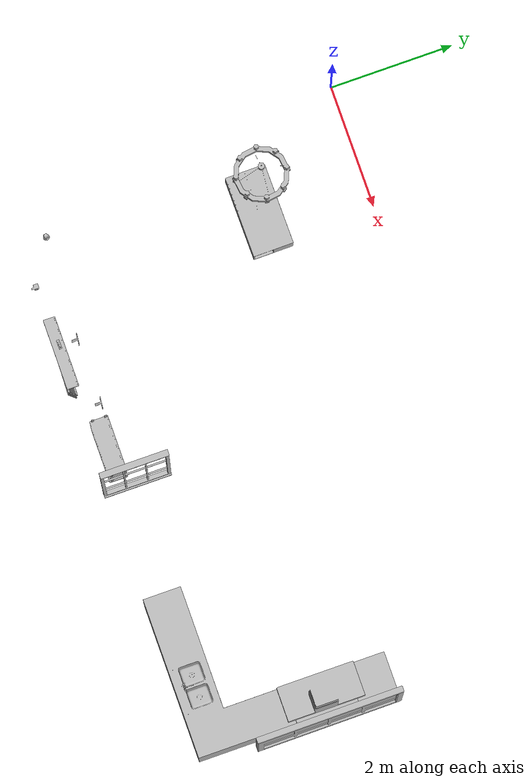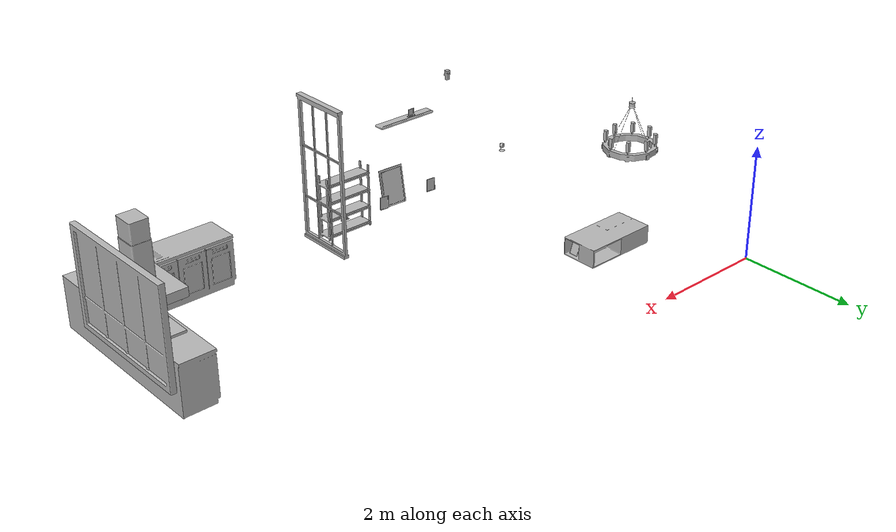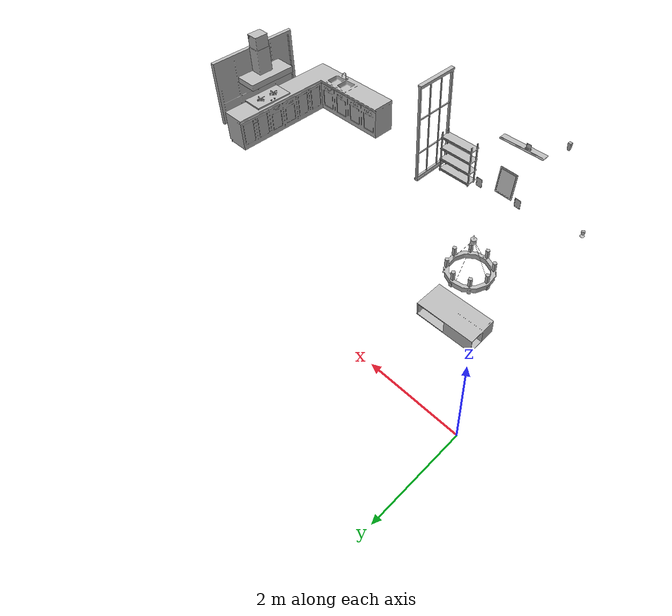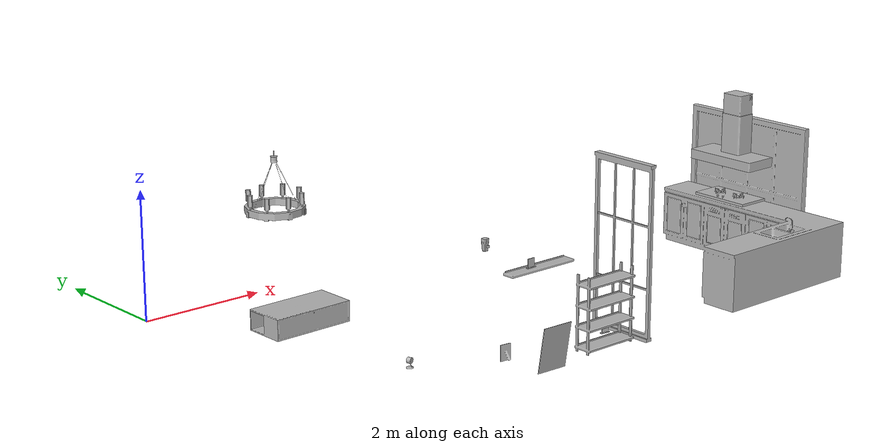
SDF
<sdf version="1.7">
 <world name="default">
  <model name="Board_01_001">
   <frame name="aws_robomaker_residential_Board_01::__model__" attached_to="aws_robomaker_residential_Board_01::link">
    <pose relative_to="__model__">0 0 0 0 -0 0</pose>
   </frame>
   <link name="aws_robomaker_residential_Board_01::link">
    <inertial><mass>1</mass></inertial>
    <collision name="collision">
     <geometry>
      <mesh>
       <uri>model:///aws_robomaker_residential_Board_01/meshes/aws_Board_01_collision.DAE</uri>
       <scale>1 1 1</scale>
      </mesh>
     </geometry>
    </collision>
    <visual name="visual">
     <geometry>
      <mesh><uri>model:///aws_robomaker_residential_Board_01/meshes/aws_Board_01_visual.DAE</uri></mesh>
     </geometry>
     <meta><layer>2</layer></meta>
    </visual>
    <pose relative_to="aws_robomaker_residential_Board_01::__model__">0 0 0 0 -0 0</pose>
   </link>
   <static>1</static>
   <pose>2.77907 -5.3927 1.53817 0 -0 0</pose>
  </model>
  <model name="Chandelier_01_004">
   <frame name="aws_robomaker_residential_Chandelier_01::__model__" attached_to="aws_robomaker_residential_Chandelier_01::link">
    <pose relative_to="__model__">0 0 0 0 -0 0</pose>
   </frame>
   <link name="aws_robomaker_residential_Chandelier_01::link">
    <inertial><mass>1</mass></inertial>
    <collision name="collision">
     <geometry>
      <mesh>
       <uri>model:///aws_robomaker_residential_Chandelier_01/meshes/aws_Chandelier_01_collision.DAE</uri>
       <scale>1 1 1</scale>
      </mesh>
     </geometry>
    </collision>
    <visual name="visual">
     <geometry>
      <mesh><uri>model:///aws_robomaker_residential_Chandelier_01/meshes/aws_Chandelier_01_visual.DAE</uri></mesh>
     </geometry>
     <meta><layer>2</layer></meta>
    </visual>
    <pose relative_to="aws_robomaker_residential_Chandelier_01::__model__">0 0 0 0 -0 0</pose>
   </link>
   <static>1</static>
   <pose>1.22106 -1.59204 1.7873 0 -0 0</pose>
  </model>
  <model name="SecurityCamera_01_001">
   <frame name="aws_robomaker_residential_SecurityCamera_01::__model__" attached_to="aws_robomaker_residential_SecurityCamera_01::link">
    <pose relative_to="__model__">0 0 0 0 -0 0</pose>
   </frame>
   <link name="aws_robomaker_residential_SecurityCamera_01::link">
    <inertial>
     <mass>1</mass>
     <inertia>
      <ixx>18.2222</ixx>
      <ixy>0</ixy>
      <ixz>0</ixz>
      <iyy>18.2222</iyy>
      <iyz>0</iyz>
      <izz>0.0018767</izz>
     </inertia>
    </inertial>
    <collision name="collision">
     <geometry>
      <mesh>
       <uri>model:///aws_robomaker_residential_SecurityCamera_01/meshes/aws_SecurityCamera_01_collision.DAE</uri>
       <scale>1 1 1</scale>
      </mesh>
     </geometry>
    </collision>
    <visual name="visual">
     <geometry>
      <mesh>
       <uri>model:///aws_robomaker_residential_SecurityCamera_01/meshes/aws_SecurityCamera_01_visual.DAE</uri>
      </mesh>
     </geometry>
     <meta><layer>2</layer></meta>
    </visual>
    <pose relative_to="aws_robomaker_residential_SecurityCamera_01::__model__">0 0 0 0 -0 0</pose>
   </link>
   <pose>0.842134 -4.99629 0.495067 0 0 -2.84104</pose>
  </model>
  <model name="CoffeeTable_01_001">
   <frame name="aws_robomaker_residential_CoffeeTable_01::__model__" attached_to="aws_robomaker_residential_CoffeeTable_01::link">
    <pose relative_to="__model__">0 0 0 0 -0 0</pose>
   </frame>
   <link name="aws_robomaker_residential_CoffeeTable_01::link">
    <inertial>
     <mass>21.7</mass>
     <inertia><ixx>0.81375</ixx><ixy>0</ixy><ixz>0</ixz><iyy>2.76675</iyy><iyz>0</iyz><izz>3.254</izz></inertia>
    </inertial>
    <collision name="collision">
     <geometry>
      <mesh>
       <uri>model:///aws_robomaker_residential_CoffeeTable_01/meshes/aws_CoffeeTable_01_collision.DAE</uri>
       <scale>1 1 1</scale>
      </mesh>
     </geometry>
     <surface><contact><ode><max_vel>0.01</max_vel></ode></contact></surface>
    </collision>
    <visual name="visual">
     <geometry>
      <mesh><uri>model:///aws_robomaker_residential_CoffeeTable_01/meshes/aws_CoffeeTable_01_visual.DAE</uri></mesh>
     </geometry>
     <meta><layer>1</layer></meta>
    </visual>
    <pose relative_to="aws_robomaker_residential_CoffeeTable_01::__model__">0 0 0 0 -0 0</pose>
   </link>
   <static>0</static>
   <pose>1.5123 -1.73344 0.041983 0 -0 0.01</pose>
  </model>
  <model name="CookingBench_01_001">
   <frame name="aws_robomaker_residential_CookingBench_01::__model__" attached_to="aws_robomaker_residential_CookingBench_01::link">
    <pose relative_to="__model__">0 0 0 0 -0 0</pose>
   </frame>
   <link name="aws_robomaker_residential_CookingBench_01::link">
    <inertial>
     <mass>1</mass>
     <inertia><ixx>1</ixx><ixy>0</ixy><ixz>0</ixz><iyy>1</iyy><iyz>0</iyz><izz>1</izz></inertia>
    </inertial>
    <collision name="collision">
     <geometry>
      <mesh>
       <uri>model:///aws_robomaker_residential_CookingBench_01/meshes/aws_CookingBench_01_collision.DAE</uri>
       <scale>1 1 1</scale>
      </mesh>
     </geometry>
    </collision>
    <visual name="visual">
     <geometry>
      <mesh>
       <uri>model:///aws_robomaker_residential_CookingBench_01/meshes/aws_CookingBench_01_visual.DAE</uri>
      </mesh>
     </geometry>
     <meta><layer>1</layer></meta>
    </visual>
    <pose relative_to="aws_robomaker_residential_CookingBench_01::__model__">0 0 0 0 -0 0</pose>
   </link>
   <pose>9.03838 -3.35114 0.90361 0 -0 3.13713</pose>
  </model>
  <model name="FoldingDoor_02_002">
   <frame name="aws_robomaker_residential_FoldingDoor_02::__model__" attached_to="aws_robomaker_residential_FoldingDoor_02::link">
    <pose relative_to="__model__">0 0 0 0 -0 0</pose>
   </frame>
   <link name="aws_robomaker_residential_FoldingDoor_02::link">
    <inertial><mass>1</mass></inertial>
    <collision name="collision">
     <geometry>
      <mesh>
       <uri>model:///aws_robomaker_residential_FoldingDoor_02/meshes/aws_FoldingDoor_02_collision.DAE</uri>
       <scale>1 1 1</scale>
      </mesh>
     </geometry>
    </collision>
    <visual name="visual">
     <geometry>
      <mesh><uri>model:///aws_robomaker_residential_FoldingDoor_02/meshes/aws_FoldingDoor_02_visual.DAE</uri></mesh>
     </geometry>
     <meta><layer>2</layer></meta>
    </visual>
    <pose relative_to="aws_robomaker_residential_FoldingDoor_02::__model__">0 0 0 0 -0 0</pose>
   </link>
   <static>1</static>
   <pose>4.8912 -4.84968 0 0 -0 0</pose>
  </model>
  <model name="KitchenCabinet_01_001">
   <frame name="aws_robomaker_residential_KitchenCabinet_01::__model__" attached_to="aws_robomaker_residential_KitchenCabinet_01::link">
    <pose relative_to="__model__">0 0 0 0 -0 0</pose>
   </frame>
   <link name="aws_robomaker_residential_KitchenCabinet_01::link">
    <inertial><mass>1</mass></inertial>
    <collision name="collision">
     <geometry>
      <mesh>
       <uri>model:///aws_robomaker_residential_KitchenCabinet_01/meshes/aws_KitchenCabinet_01_collision.DAE</uri>
       <scale>1 1 1</scale>
      </mesh>
     </geometry>
    </collision>
    <visual name="visual">
     <geometry>
      <mesh>
       <uri>model:///aws_robomaker_residential_KitchenCabinet_01/meshes/aws_KitchenCabinet_01_visual.DAE</uri>
      </mesh>
     </geometry>
     <meta><layer>1</layer></meta>
    </visual>
    <pose relative_to="aws_robomaker_residential_KitchenCabinet_01::__model__">0 0 0 0 -0 0</pose>
   </link>
   <static>1</static>
   <pose>8.00201 -3.83651 0.012068 0 0 -3.14</pose>
  </model>
  <model name="LightC_01_001">
   <frame name="aws_robomaker_residential_LightC_01::__model__" attached_to="aws_robomaker_residential_LightC_01::link">
    <pose relative_to="__model__">0 0 0 0 -0 0</pose>
   </frame>
   <link name="aws_robomaker_residential_LightC_01::link">
    <inertial>
     <mass>1</mass>
     <inertia><ixx>1</ixx><ixy>0</ixy><ixz>0</ixz><iyy>1</iyy><iyz>0</iyz><izz>1</izz></inertia>
    </inertial>
    <collision name="collision">
     <geometry>
      <mesh>
       <uri>model:///aws_robomaker_residential_LightC_01/meshes/aws_LightC_01_collision.DAE</uri>
       <scale>1 1 1</scale>
      </mesh>
     </geometry>
    </collision>
    <visual name="visual">
     <geometry>
      <mesh><uri>model:///aws_robomaker_residential_LightC_01/meshes/aws_LightC_01_visual.DAE</uri></mesh>
     </geometry>
     <meta><layer>2</layer></meta>
    </visual>
    <pose relative_to="aws_robomaker_residential_LightC_01::__model__">0 0 0 0 -0 0</pose>
   </link>
   <static>0</static>
   <pose>1.76957 -5.44437 2 0 -0 0</pose>
  </model>
  <model name="PortraitB_03">
   <frame name="aws_robomaker_residential_PortraitB_03::__model__" attached_to="aws_robomaker_residential_PortraitB_03::link">
    <pose relative_to="__model__">0 0 0 0 -0 0</pose>
   </frame>
   <link name="aws_robomaker_residential_PortraitB_03::link">
    <inertial><mass>1</mass></inertial>
    <collision name="collision">
     <geometry>
      <mesh>
       <uri>model:///aws_robomaker_residential_PortraitB_03/meshes/aws_PortraitB_01_collision.DAE</uri>
       <scale>1 1 1</scale>
      </mesh>
     </geometry>
    </collision>
    <visual name="visual">
     <geometry>
      <mesh><uri>model:///aws_robomaker_residential_PortraitB_03/meshes/aws_PortraitB_01_visual.DAE</uri></mesh>
     </geometry>
     <meta><layer>2</layer></meta>
    </visual>
    <pose relative_to="aws_robomaker_residential_PortraitB_03::__model__">0 0 0 0 -0 0</pose>
   </link>
   <static>1</static>
   <pose>3.07138 -5.34937 0.005494 -0.168428 -0 3.10423</pose>
  </model>
  <model name="DeskPortraitA_02">
   <frame name="aws_robomaker_residential_DeskPortraitA_02::__model__" attached_to="aws_robomaker_residential_DeskPortraitA_02::link">
    <pose relative_to="__model__">0 0 0 0 -0 0</pose>
   </frame>
   <link name="aws_robomaker_residential_DeskPortraitA_02::link">
    <inertial>
     <mass>1</mass>
     <inertia><ixx>0.0835</ixx><ixy>0</ixy><ixz>0</ixz><iyy>0.16</iyy><iyz>0</iyz><izz>0.08347</izz></inertia>
    </inertial>
    <collision name="collision">
     <geometry>
      <mesh>
       <uri>model:///aws_robomaker_residential_DeskPortraitA_02/meshes/aws_DeskPortraitA_01_collision.DAE</uri>
       <scale>1 1 1</scale>
      </mesh>
     </geometry>
    </collision>
    <visual name="visual">
     <geometry>
      <mesh>
       <uri>model:///aws_robomaker_residential_DeskPortraitA_02/meshes/aws_DeskPortraitA_01_visual.DAE</uri>
      </mesh>
     </geometry>
     <meta><layer>1</layer></meta>
    </visual>
    <pose relative_to="aws_robomaker_residential_DeskPortraitA_02::__model__">0 0 0 0 -0 0</pose>
   </link>
   <pose>2.04608 -1.89293 0.070388 -0.018328 -0.000441 1.57622</pose>
  </model>
  <model name="DeskPortraitD_01">
   <frame name="aws_robomaker_residential_DeskPortraitD_01::__model__" attached_to="aws_robomaker_residential_DeskPortraitD_01::link">
    <pose relative_to="__model__">0 0 0 0 -0 0</pose>
   </frame>
   <link name="aws_robomaker_residential_DeskPortraitD_01::link">
    <inertial>
     <mass>0.4</mass>
     <inertia><ixx>0.0616</ixx><ixy>0</ixy><ixz>0</ixz><iyy>0.1313</iyy><iyz>0</iyz><izz>0.0803</izz></inertia>
    </inertial>
    <collision name="collision">
     <geometry>
      <mesh>
       <uri>model:///aws_robomaker_residential_DeskPortraitD_01/meshes/aws_DeskPortraitD_01_collision.DAE</uri>
       <scale>1 1 1</scale>
      </mesh>
     </geometry>
     <surface>
      <friction><ode><mu>0.7</mu><mu2>0.7</mu2></ode></friction>
      <contact><ode><kd>28500</kd></ode></contact>
     </surface>
    </collision>
    <visual name="visual">
     <geometry>
      <mesh>
       <uri>model:///aws_robomaker_residential_DeskPortraitD_01/meshes/aws_DeskPortraitD_01_visual.DAE</uri>
      </mesh>
     </geometry>
     <meta><layer>1</layer></meta>
    </visual>
    <pose relative_to="aws_robomaker_residential_DeskPortraitD_01::__model__">0 0 0 0 -0 0</pose>
   </link>
   <pose>2.64556 -5.37622 1.57374 0 0 -3.11283</pose>
  </model>
  <model name="DeskPortraitD_04">
   <frame name="aws_robomaker_residential_DeskPortraitD_04::__model__" attached_to="aws_robomaker_residential_DeskPortraitD_04::link">
    <pose relative_to="__model__">0 0 0 0 -0 0</pose>
   </frame>
   <link name="aws_robomaker_residential_DeskPortraitD_04::link">
    <inertial>
     <mass>0.4</mass>
     <inertia><ixx>0.0616</ixx><ixy>0</ixy><ixz>0</ixz><iyy>0.1313</iyy><iyz>0</iyz><izz>0.0803</izz></inertia>
    </inertial>
    <collision name="collision">
     <geometry>
      <mesh>
       <uri>model:///aws_robomaker_residential_DeskPortraitD_04/meshes/aws_DeskPortraitD_01_collision.DAE</uri>
       <scale>1 1 1</scale>
      </mesh>
     </geometry>
     <surface>
      <friction><ode><mu>0.7</mu><mu2>0.7</mu2></ode></friction>
      <contact><ode><kd>28500</kd></ode></contact>
     </surface>
    </collision>
    <visual name="visual">
     <geometry>
      <mesh>
       <uri>model:///aws_robomaker_residential_DeskPortraitD_04/meshes/aws_DeskPortraitD_01_visual.DAE</uri>
      </mesh>
     </geometry>
     <meta><layer>1</layer></meta>
    </visual>
    <pose relative_to="aws_robomaker_residential_DeskPortraitD_04::__model__">0 0 0 0 -0 0</pose>
   </link>
   <pose>4.30213 -5.17657 0.202496 0.007118 -1e-06 3.04668</pose>
  </model>
  <model name="DeskPortraitB_01">
   <frame name="aws_robomaker_residential_DeskPortraitB_01::__model__" attached_to="aws_robomaker_residential_DeskPortraitB_01::link">
    <pose relative_to="__model__">0 0 0 0 -0 0</pose>
   </frame>
   <link name="aws_robomaker_residential_DeskPortraitB_01::link">
    <inertial>
     <mass>1</mass>
     <inertia><ixx>0.0135</ixx><ixy>0</ixy><ixz>0</ixz><iyy>0.02</iyy><iyz>0</iyz><izz>0.01347</izz></inertia>
    </inertial>
    <collision name="collision">
     <geometry>
      <mesh>
       <uri>model:///aws_robomaker_residential_DeskPortraitB_01/meshes/aws_DeskPortraitB_01_collision.DAE</uri>
       <scale>1 1 1</scale>
      </mesh>
     </geometry>
    </collision>
    <visual name="visual">
     <geometry>
      <mesh>
       <uri>model:///aws_robomaker_residential_DeskPortraitB_01/meshes/aws_DeskPortraitB_01_visual.DAE</uri>
      </mesh>
     </geometry>
     <meta><layer>1</layer></meta>
    </visual>
    <pose relative_to="aws_robomaker_residential_DeskPortraitB_01::__model__">0 0 0 0 -0 0</pose>
   </link>
   <pose>3.547 -5.08795 0.202496 0.007118 -1e-06 3.04668</pose>
  </model>
  <model name="DeskPortraitB_02">
   <frame name="aws_robomaker_residential_DeskPortraitB_02::__model__" attached_to="aws_robomaker_residential_DeskPortraitB_02::link">
    <pose relative_to="__model__">0 0 0 0 -0 0</pose>
   </frame>
   <link name="aws_robomaker_residential_DeskPortraitB_02::link">
    <inertial>
     <mass>1</mass>
     <inertia><ixx>0.0135</ixx><ixy>0</ixy><ixz>0</ixz><iyy>0.02</iyy><iyz>0</iyz><izz>0.01347</izz></inertia>
    </inertial>
    <collision name="collision">
     <geometry>
      <mesh>
       <uri>model:///aws_robomaker_residential_DeskPortraitB_02/meshes/aws_DeskPortraitB_01_collision.DAE</uri>
       <scale>1 1 1</scale>
      </mesh>
     </geometry>
    </collision>
    <visual name="visual">
     <geometry>
      <mesh>
       <uri>model:///aws_robomaker_residential_DeskPortraitB_02/meshes/aws_DeskPortraitB_01_visual.DAE</uri>
      </mesh>
     </geometry>
     <meta><layer>1</layer></meta>
    </visual>
    <pose relative_to="aws_robomaker_residential_DeskPortraitB_02::__model__">0 0 0 0 -0 0</pose>
   </link>
   <pose>2.48608 -5.10457 0.202496 0.007118 -1e-06 3.04668</pose>
  </model>
  <model name="Rangehood_01_001">
   <frame name="aws_robomaker_residential_Rangehood_01::__model__" attached_to="aws_robomaker_residential_Rangehood_01::link">
    <pose relative_to="__model__">0 0 0 0 -0 0</pose>
   </frame>
   <link name="aws_robomaker_residential_Rangehood_01::link">
    <inertial><mass>1</mass></inertial>
    <collision name="collision">
     <geometry>
      <mesh>
       <uri>model:///aws_robomaker_residential_Rangehood_01/meshes/aws_Rangehood_01_collision.DAE</uri>
       <scale>1 1 1</scale>
      </mesh>
     </geometry>
    </collision>
    <visual name="visual">
     <geometry>
      <mesh><uri>model:///aws_robomaker_residential_Rangehood_01/meshes/aws_Rangehood_01_visual.DAE</uri></mesh>
     </geometry>
     <meta><layer>2</layer></meta>
    </visual>
    <pose relative_to="aws_robomaker_residential_Rangehood_01::__model__">0 0 0 0 -0 0</pose>
   </link>
   <static>1</static>
   <pose>9.01979 -3.36994 1.50761 0 -0 0</pose>
  </model>
  <model name="ShoeRack_01_001">
   <frame name="aws_robomaker_residential_ShoeRack_01::__model__" attached_to="aws_robomaker_residential_ShoeRack_01::link">
    <pose relative_to="__model__">0 0 0 0 -0 0</pose>
   </frame>
   <link name="aws_robomaker_residential_ShoeRack_01::link">
    <inertial>
     <mass>6</mass>
     <inertia>
      <ixx>0.02</ixx>
      <ixy>0</ixy>
      <ixz>0</ixz>
      <iyy>0.04</iyy>
      <iyz>0</iyz>
      <ixx>0.02</ixx>
      <izz>1</izz>
     </inertia>
    </inertial>
    <collision name="collision">
     <geometry>
      <mesh>
       <uri>model:///aws_robomaker_residential_ShoeRack_01/meshes/aws_ShoeRack_01_collision.DAE</uri>
       <scale>1 1 1</scale>
      </mesh>
     </geometry>
     <surface>
      <friction><ode><mu>0.2</mu><mu2>0.2</mu2></ode></friction>
      <contact><ode><kd>2500</kd></ode></contact>
     </surface>
    </collision>
    <visual name="visual">
     <geometry>
      <mesh><uri>model:///aws_robomaker_residential_ShoeRack_01/meshes/aws_ShoeRack_01_visual.DAE</uri></mesh>
     </geometry>
     <meta><layer>1</layer></meta>
    </visual>
    <pose relative_to="aws_robomaker_residential_ShoeRack_01::__model__">0 0 0 0 -0 0</pose>
   </link>
   <pose>4.29798 -5.17357 0 0 -0 0</pose>
  </model>
  <model name="RoomWindow_01_003">
   <frame name="aws_robomaker_residential_RoomWindow_01::__model__" attached_to="aws_robomaker_residential_RoomWindow_01::link">
    <pose relative_to="__model__">0 0 0 0 -0 0</pose>
   </frame>
   <link name="aws_robomaker_residential_RoomWindow_01::link">
    <inertial><mass>1</mass></inertial>
    <collision name="collision">
     <geometry>
      <mesh>
       <uri>model:///aws_robomaker_residential_RoomWindow_01/meshes/aws_RoomWindow_01_collision.DAE</uri>
       <scale>1 1 1</scale>
      </mesh>
     </geometry>
    </collision>
    <visual name="visual">
     <geometry>
      <mesh><uri>model:///aws_robomaker_residential_RoomWindow_01/meshes/aws_RoomWindow_01_visual.DAE</uri></mesh>
     </geometry>
     <meta><layer>2</layer></meta>
    </visual>
    <pose relative_to="aws_robomaker_residential_RoomWindow_01::__model__">0 0 0 0 -0 0</pose>
   </link>
   <static>1</static>
   <pose>9.42262 -3.37398 0.502739 0 0 -3.1361</pose>
  </model>
 </world>
</sdf>
